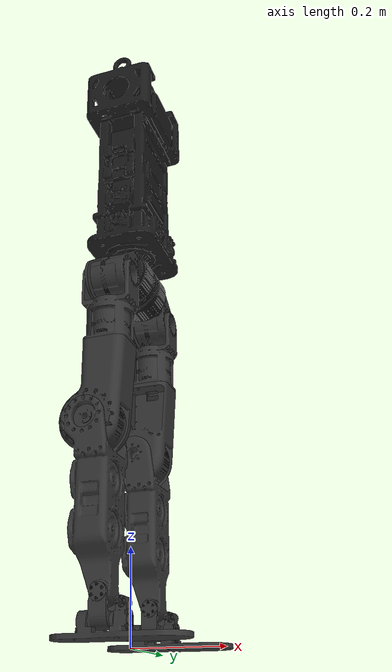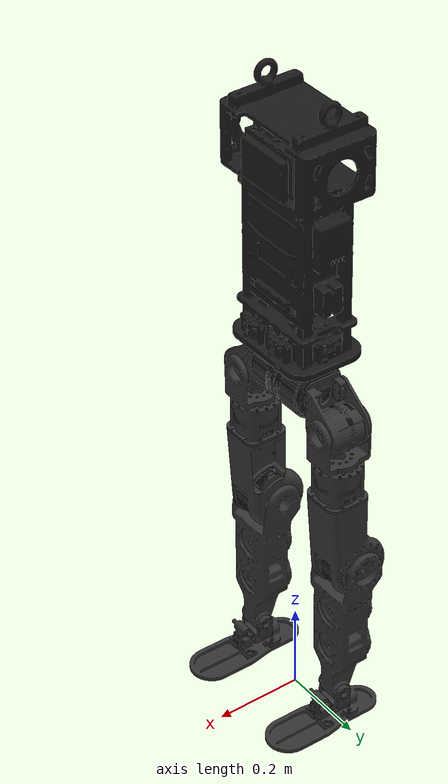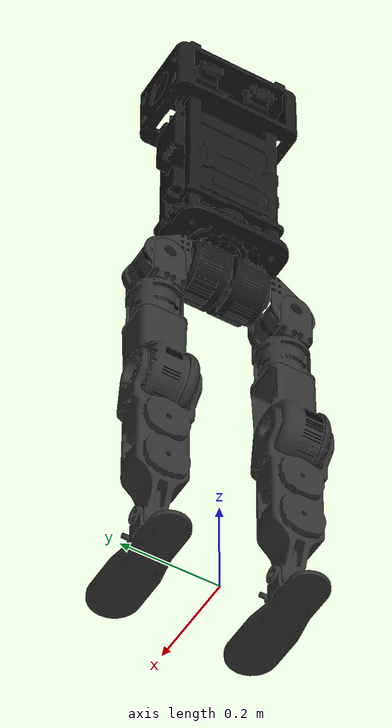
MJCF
<?xml version='1.0' encoding='utf-8'?>
<mujoco model="kimm_v4">
  <compiler angle="radian" meshdir="meshes" autolimits="true" />
  <default>
    <default class="v4">
      <default class="visual">
        <geom group="1" type="mesh" density="0" contype="0" conaffinity="0" />
      </default>
      <default class="collision">
        <geom group="3" rgba=".2 .8 .2 .35" contype="1" conaffinity="1" />
      </default>
      <site group="5" rgba="1 0 0 1" />
    </default>
  </default>
  <asset>
    <material name="blue_accent" rgba="0.2 0.5 1 1" shininess="0.9" specular="1" reflectance="0.3" />
    <material name="anthracite" rgba="0.2 0.2 0.2 1" shininess="0.1" specular="0.3" reflectance="0.1" />
    <material name="black" rgba="0.1 0.1 0.1 1" shininess="0.05" specular="0.1" reflectance="0.05" />
    <mesh name="torso_link" file="body.STL" />
    <mesh name="base_link" file="base_link.STL" />
    <mesh name="right_hip_pitch_link" file="right_pelvis_pitch.STL" />
    <mesh name="right_hip_roll_link" file="right_pelvis_roll.STL" />
    <mesh name="right_hip_yaw_link" file="right_pelvis_yaw.STL" />
    <mesh name="right_knee_pitch" file="right_knee_pitch.STL" />
    <mesh name="right_ankle_pitch" file="right_ankle_pitch.STL" />
    <mesh name="right_ankle_roll" file="right_ankle_roll.STL" />
    <mesh name="left_hip_pitch_link" file="left_pelvis_pitch.STL" />
    <mesh name="left_hip_roll_link" file="left_pelvis_roll.STL" />
    <mesh name="left_hip_yaw_link" file="left_pelvis_yaw.STL" />
    <mesh name="left_knee_pitch" file="left_knee_pitch.STL" />
    <mesh name="left_ankle_pitch" file="left_ankle_pitch.STL" />
    <mesh name="left_ankle_roll" file="left_ankle_roll.STL" />
  </asset>
  <worldbody>
    <body name="torso_link" pos="0 0 0.84" childclass="v4">
      <inertial pos="0.00119 0.00147 0.34495" mass="12.49" fullinertia="0.34838741 0.30753775 0.08932661 -0.00000673 0.00132215 -0.00000525" />
      <freejoint name="floating_base_joint" />
      <geom mesh="torso_link" class="visual" material="black" />
      <site name="imu" type="box" size="0.005 0.005 0.005" pos="0 0 0.59" material="blue_accent" />
      <body name="base_link" pos="0 0 0.067">
        <inertial pos="0.00023 5e-05 -0.03695" quat="0.999975 7.39738e-05 0.00703165 0.000669489" mass="7.11" diaginertia="0.0405206 0.033802 0.0193877" />
        <joint name="waist_yaw_joint" pos="0 0 0" axis="0 0 -1" range="-1.5707963268 1.5707963268" />
        <geom mesh="base_link" class="visual" material="black" />
        <body name="right_hip_pitch_link" pos="0 -0.085 -0.076467">
          <inertial pos="-0.00709 -0.04945 -0.0433" quat="0.780112 0.23014 -0.20488 0.544505" mass="1.83" diaginertia="0.00182697 0.00136691 0.000801751" />
          <joint name="right_hip_pitch_joint" pos="0 0 0" axis="0 1 0" range="-1.5707963268 1.5707963268" />
          <geom mesh="right_hip_pitch_link" class="visual" material="anthracite" />
          <body name="right_hip_roll_link" pos="-0.0015 -0.0547 -0.05">
            <inertial pos="0.00118 0.00016 -0.11497" quat="0.712121 0.0150862 0.0167155 0.701696" mass="2.32" diaginertia="0.00587062 0.00516767 0.00197576" />
            <joint name="right_hip_roll_joint" pos="0 0 0" axis="-1 0 0" range="-0.5235987756 1.5707963268" />
            <geom mesh="right_hip_roll_link" class="visual" material="anthracite" />
            <body name="right_hip_yaw_link" pos="0.0015 0 -0.0883">
              <inertial pos="-0.02331 -0.00656 -0.2375" quat="0.667431 -0.093322 -0.0689066 0.73558" mass="3.6" diaginertia="0.016402 0.0153084 0.00650592" />
              <joint name="right_hip_yaw_joint" pos="0 0 0" axis="0 0 -1" range="-0.7853981634 0.7853981634" />
              <geom mesh="right_hip_yaw_link" class="visual" material="anthracite" />
              <body name="right_knee_link" pos="-0.03 0.00025 -0.2617">
                <inertial pos="0.01499 0.00035 -0.18179" quat="0.926136 0.0355028 0.060614 0.37059" mass="5.59" diaginertia="0.0428992 0.0427121 0.00731881" />
                <joint name="right_knee_joint" pos="0 0 0" axis="0 1 0" range="-0.1745329252 2.0943951024" />
                <geom mesh="right_knee_pitch" class="visual" material="anthracite" />
                <body name="right_ankle_pitch_link" pos="0.03 -0.00125 -0.3425">
                  <inertial pos="0.00093 -0.00194 -0.03149" quat="0.982149 -0.126921 0.0469937 0.130638" mass="0.49" diaginertia="0.000419186 0.000407787 0.000289417" />
                  <joint name="right_ankle_pitch_joint" pos="0 0 0" axis="0 1 0" range="-0.3490658504 0.3490658504" />
                  <geom mesh="right_ankle_pitch" class="visual" material="anthracite" />
                  <body name="right_ankle_roll_link" pos="0 0 -0.049">
                    <inertial pos="0.02618 0 -0.0152" quat="0.000238488 0.705424 0.000231031 0.708786" mass="0.66" diaginertia="0.00306951 0.00296424 0.000696756" />
                    <joint name="right_ankle_roll_joint" pos="0 0 0" axis="-1 0 0" range="-0.1745329252 0.1745329252" />
                    <geom mesh="right_ankle_roll" class="visual" material="anthracite" />
                    <site name="right_foot" pos="0.04 0 -0.03" />
                    <geom name="right_foot1_collision" type="capsule" fromto="0.0300232141 0.0444370646 -0.0277878167 0.1350232201 0.0444370015 -0.0277878167" size="0.0069412867" rgba="0.200000 0.800000 0.200000 0.350000" contype="1" conaffinity="1" group="3" />
                    <geom name="right_foot2_collision" type="capsule" fromto="-0.0749767948 0.0335563957 -0.0277878167 0.1550232094 0.0335562575 -0.0277878167" size="0.0069412867" rgba="0.200000 0.800000 0.200000 0.350000" contype="1" conaffinity="1" group="3" />
                    <geom name="right_foot3_collision" type="capsule" fromto="-0.0939767966 0.0201756751 -0.0277878167 0.1639515517 0.0201755202 -0.0277878167" size="0.0069412867" rgba="0.200000 0.800000 0.200000 0.350000" contype="1" conaffinity="1" group="3" />
                    <geom name="right_foot4_collision" type="capsule" fromto="-0.0989768073 0.0067949462 -0.0277878167 0.1680231899 0.0067947859 -0.0277878167" size="0.0069412867" rgba="0.200000 0.800000 0.200000 0.350000" contype="1" conaffinity="1" group="3" />
                    <geom name="right_foot5_collision" type="capsule" fromto="-0.0989768153 -0.0065857857 -0.0277878167 0.1680231818 -0.0065859461 -0.0277878167" size="0.0069412867" rgba="0.200000 0.800000 0.200000 0.350000" contype="1" conaffinity="1" group="3" />
                    <geom name="right_foot6_collision" type="capsule" fromto="-0.0934768271 -0.0199665209 -0.0277878167 0.1647074381 -0.0199666760 -0.0277878167" size="0.0069412867" rgba="0.200000 0.800000 0.200000 0.350000" contype="1" conaffinity="1" group="3" />
                    <geom name="right_foot7_collision" type="capsule" fromto="-0.0764768305 -0.0333472630 -0.0277878167 0.1550231692 -0.0333474021 -0.0277878167" size="0.0069412867" rgba="0.200000 0.800000 0.200000 0.350000" contype="1" conaffinity="1" group="3" />
                    <geom name="right_foot8_collision" type="capsule" fromto="0.0300231608 -0.0442280590 -0.0277878167 0.1379396785 -0.0442281238 -0.0277878167" size="0.0069412867" rgba="0.200000 0.800000 0.200000 0.350000" contype="1" conaffinity="1" group="3" />
                  </body>
                  <geom name="right_ankle_pitch_candidate_collision" type="capsule" fromto="-0.0299768112 0.0000272112 -0.0459139543 0.0350231882 0.0000271721 -0.0459139543" size="0.0250000004" rgba="0.200000 0.800000 0.200000 0.350000" contype="1" conaffinity="1" group="3" />
                </body>
                <geom name="right_knee_pitch1_collision" type="capsule" fromto="0.0103490288 0.0209850359 -0.2469975578 0.0103490288 0.0209850359 -0.1000000015" size="0.0450000018" rgba="0.200000 0.800000 0.200000 0.350000" contype="1" conaffinity="1" group="3" />
                <geom name="right_knee_pitch2_collision" type="capsule" fromto="0.0243490153 -0.0014999583 -0.2700000014 0.0243490153 -0.0014999583 -0.3200000133" size="0.0299999993" rgba="0.200000 0.800000 0.200000 0.350000" contype="1" conaffinity="1" group="3" />
                <geom name="right_knee_pitch3_collision" type="capsule" fromto="0.0093490021 -0.0239849350 -0.2451828076 0.0093490021 -0.0239849350 -0.1000000015" size="0.0450000018" rgba="0.200000 0.800000 0.200000 0.350000" contype="1" conaffinity="1" group="3" />
              </body>
              <geom name="right_hip_yaw_link_candidate_collision" type="capsule" fromto="-0.0228382017 -0.0020997121 -0.2750411662 -0.0049461006 -0.0012184913 -0.0299999993" size="0.0626284318" rgba="0.200000 0.800000 0.200000 0.350000" contype="1" conaffinity="1" group="3" />
            </body>
          </body>
          <geom name="right_hip_pitch_link_candidate_collision" type="capsule" fromto="-0.0015000126 -0.0553665590 -0.0456905465 -0.0015000126 -0.0553665590 -0.0119281028" size="0.0517950128" rgba="0.200000 0.800000 0.200000 0.350000" contype="1" conaffinity="1" group="3" />
        </body>
        <body name="left_hip_pitch_link" pos="0 0.085 -0.076467">
          <inertial pos="-0.00738 0.04954 -0.04373" quat="0.574238 -0.205232 0.213838 0.763154" mass="1.81" diaginertia="0.00166589 0.001254 0.000767111" />
          <joint name="left_hip_pitch_joint" pos="0 0 0" axis="0 -1 0" range="-1.5707963268 1.5707963268" />
          <geom mesh="left_hip_pitch_link" class="visual" material="anthracite" />
          <body name="left_hip_roll_link" pos="-0.0015 0.0547 -0.05">
            <inertial pos="0.00118 0.00016 -0.114971" quat="0.712121 0.0150862 0.0167155 0.701696" mass="2.32" diaginertia="0.00587062 0.00516767 0.00197576" />
            <joint name="left_hip_roll_joint" pos="0 0 0" axis="-1 0 0" range="-1.5707963268 0.5235987756" />
            <geom mesh="left_hip_roll_link" class="visual" material="anthracite" />
            <body name="left_hip_yaw_link" pos="0.0015 0 -0.0883">
              <inertial pos="-0.02312 0.00661 -0.23761" quat="0.735609 -0.0677297 -0.0916704 0.667749" mass="3.6" diaginertia="0.0164112 0.0153305 0.00650476" />
              <joint name="left_hip_yaw_joint" pos="0 0 0" axis="0 0 -1" range="-0.7853981634 0.7853981634" />
              <geom mesh="left_hip_yaw_link" class="visual" material="anthracite" />
              <body name="left_knee_link" pos="-0.029976 -0.0005 -0.2617">
                <inertial pos="0.01486 0.00017 -0.18174" quat="0.948558 -0.0311719 0.0625315 -0.308797" mass="5.59" diaginertia="0.0428312 0.0426028 0.00725808" />
                <joint name="left_knee_joint" pos="0 0 0" axis="0 1 0" range="-0.1745329252 2.0943951024" />
                <geom mesh="left_knee_pitch" class="visual" material="anthracite" />
                <body name="left_ankle_pitch_link" pos="0.03 0.0015 -0.3425">
                  <inertial pos="0.00093 -0.00194 -0.03149" quat="0.982149 -0.126921 0.0469937 0.130638" mass="0.49" diaginertia="0.000419186 0.000407787 0.000289417" />
                  <joint name="left_ankle_pitch_joint" pos="0 0 0" axis="0 1 0" range="-0.3490658504 0.3490658504" />
                  <geom mesh="left_ankle_pitch" class="visual" material="anthracite" />
                  <body name="left_ankle_roll_link" pos="0 0 -0.049">
                    <inertial pos="0.02618 0 -0.015203" quat="0.000238488 0.705424 0.000231031 0.708786" mass="0.66" diaginertia="0.00306951 0.00296424 0.000696756" />
                    <joint name="left_ankle_roll_joint" pos="0 0 0" axis="-1 0 0" range="-0.1745329252 0.1745329252" />
                    <geom mesh="left_ankle_roll" class="visual" material="anthracite" />
                    <site name="left_foot" pos="0.04 0 -0.03" />
                    <geom name="left_foot1_collision" type="capsule" fromto="0.0299999993 -0.0444378872 -0.0277878167 0.1350000054 -0.0444378872 -0.0277878167" size="0.0069412867" rgba="0.200000 0.800000 0.200000 0.350000" contype="1" conaffinity="1" group="3" />
                    <geom name="left_foot2_collision" type="capsule" fromto="-0.0750000030 -0.0335571553 -0.0277878167 0.1550000012 -0.0335571553 -0.0277878167" size="0.0069412867" rgba="0.200000 0.800000 0.200000 0.350000" contype="1" conaffinity="1" group="3" />
                    <geom name="left_foot3_collision" type="capsule" fromto="-0.0939999968 -0.0201764234 -0.0277878167 0.1639283515 -0.0201764234 -0.0277878167" size="0.0069412867" rgba="0.200000 0.800000 0.200000 0.350000" contype="1" conaffinity="1" group="3" />
                    <geom name="left_foot4_collision" type="capsule" fromto="-0.0989999995 -0.0067956914 -0.0277878167 0.1679999977 -0.0067956914 -0.0277878167" size="0.0069412867" rgba="0.200000 0.800000 0.200000 0.350000" contype="1" conaffinity="1" group="3" />
                    <geom name="left_foot5_collision" type="capsule" fromto="-0.0989999995 0.0065850405 -0.0277878167 0.1679999977 0.0065850405 -0.0277878167" size="0.0069412867" rgba="0.200000 0.800000 0.200000 0.350000" contype="1" conaffinity="1" group="3" />
                    <geom name="left_foot6_collision" type="capsule" fromto="-0.0935000032 0.0199657724 -0.0277878167 0.1646842620 0.0199657724 -0.0277878167" size="0.0069412867" rgba="0.200000 0.800000 0.200000 0.350000" contype="1" conaffinity="1" group="3" />
                    <geom name="left_foot7_collision" type="capsule" fromto="-0.0764999986 0.0333465043 -0.0277878167 0.1550000012 0.0333465043 -0.0277878167" size="0.0069412867" rgba="0.200000 0.800000 0.200000 0.350000" contype="1" conaffinity="1" group="3" />
                    <geom name="left_foot8_collision" type="capsule" fromto="0.0299999993 0.0442272363 -0.0277878167 0.1379165170 0.0442272363 -0.0277878167" size="0.0069412867" rgba="0.200000 0.800000 0.200000 0.350000" contype="1" conaffinity="1" group="3" />
                  </body>
                  <geom name="left_ankle_pitch_candidate_collision" type="capsule" fromto="-0.0299999993 -0.0000279978 -0.0459139543 0.0350000001 -0.0000279978 -0.0459139543" size="0.0250000004" rgba="0.200000 0.800000 0.200000 0.350000" contype="1" conaffinity="1" group="3" />
                </body>
                <geom name="left_knee_pitch1_collision" type="capsule" fromto="0.0103254929 -0.0207358202 -0.2469975578 0.0103254929 -0.0207358202 -0.1000000015" size="0.0450000018" rgba="0.200000 0.800000 0.200000 0.350000" contype="1" conaffinity="1" group="3" />
                <geom name="left_knee_pitch2_collision" type="capsule" fromto="0.0243254929 0.0017491656 -0.2700000014 0.0243254929 0.0017491656 -0.3200000133" size="0.0299999993" rgba="0.200000 0.800000 0.200000 0.350000" contype="1" conaffinity="1" group="3" />
                <geom name="left_knee_pitch3_collision" type="capsule" fromto="0.0093254932 0.0242341513 -0.2451828076 0.0093254932 0.0242341513 -0.1000000015" size="0.0450000018" rgba="0.200000 0.800000 0.200000 0.350000" contype="1" conaffinity="1" group="3" />
              </body>
              <geom name="left_hip_yaw_link_candidate_collision" type="capsule" fromto="-0.0229137888 0.0009728874 -0.2750411662 -0.0049999999 0.0009728874 -0.0299999993" size="0.0626284318" rgba="0.200000 0.800000 0.200000 0.350000" contype="1" conaffinity="1" group="3" />
            </body>
          </body>
          <geom name="left_hip_pitch_link_candidate_collision" type="capsule" fromto="-0.0014999794 0.0553665599 -0.0456905465 -0.0014999794 0.0553665599 -0.0119281028" size="0.0517950128" rgba="0.200000 0.800000 0.200000 0.350000" contype="1" conaffinity="1" group="3" />
        </body>
        <geom name="base_link_candidate_collision" type="capsule" fromto="-0.0001209924 -0.0369324626 -0.0762800974 -0.0001209924 0.0368330705 -0.0762800974" size="0.0648169270" rgba="0.200000 0.800000 0.200000 0.350000" contype="1" conaffinity="1" group="3" />
      </body>
      <geom name="torso_link_part0_collision_0" type="capsule" fromto="0.0000483835 -0.0703784957 0.5375880631 0.0000483835 0.0704030557 0.5375880631" size="0.0932661097" rgba="0.200000 0.800000 0.200000 0.350000" contype="1" conaffinity="1" group="3" />
      <geom name="torso_link_part1_collision_0" type="capsule" fromto="0.0016498501 0.0000152293 0.1655166430 0.0016498501 0.0000152293 0.3794502926" size="0.1129616383" rgba="0.200000 0.800000 0.200000 0.350000" contype="1" conaffinity="1" group="3" />
    </body>
  </worldbody>
  <contact>
    <exclude body1="base_link" body2="torso_link" />
    <exclude body1="base_link" body2="right_hip_pitch_link" />
    <exclude body1="base_link" body2="left_hip_pitch_link" />
    <exclude body1="base_link" body2="right_hip_roll_link" />
    <exclude body1="base_link" body2="left_hip_roll_link" />
    <exclude body1="right_hip_pitch_link" body2="right_hip_roll_link" />
    <exclude body1="right_hip_roll_link" body2="right_hip_yaw_link" />
    <exclude body1="right_hip_yaw_link" body2="right_knee_link" />
    <exclude body1="right_knee_link" body2="right_ankle_pitch_link" />
    <exclude body1="right_ankle_pitch_link" body2="right_ankle_roll_link" />
    <exclude body1="left_hip_pitch_link" body2="left_hip_roll_link" />
    <exclude body1="left_hip_roll_link" body2="left_hip_yaw_link" />
    <exclude body1="left_hip_yaw_link" body2="left_knee_link" />
    <exclude body1="left_knee_link" body2="left_ankle_pitch_link" />
    <exclude body1="left_ankle_pitch_link" body2="left_ankle_roll_link" />
  </contact>
  <sensor>
    <gyro name="imu_ang_vel" site="imu" />
    <velocimeter name="imu_lin_vel" site="imu" />
    <accelerometer name="imu_lin_acc" site="imu" />
    <subtreeangmom name="root_angmom" body="base_link" />
  </sensor>
</mujoco>
